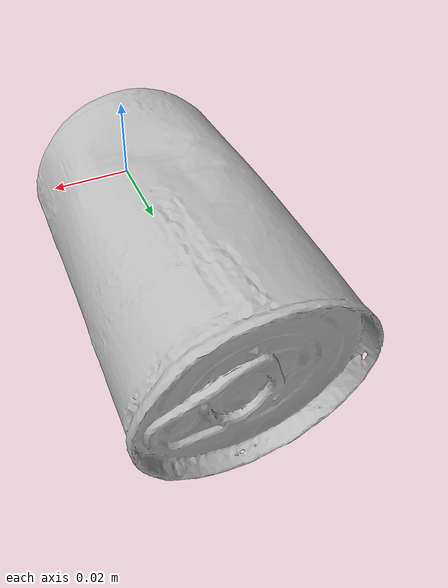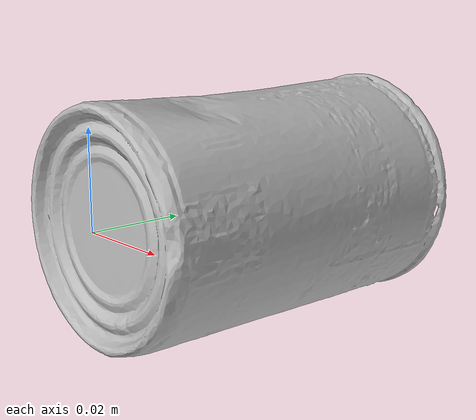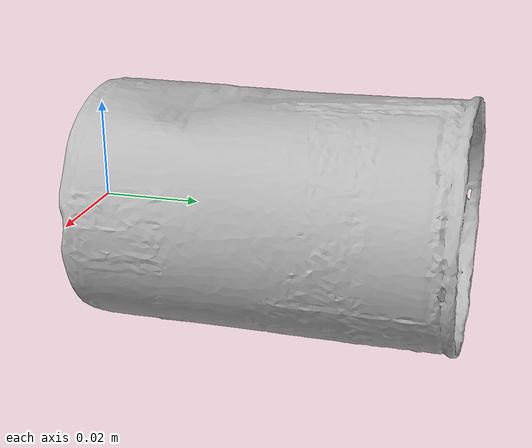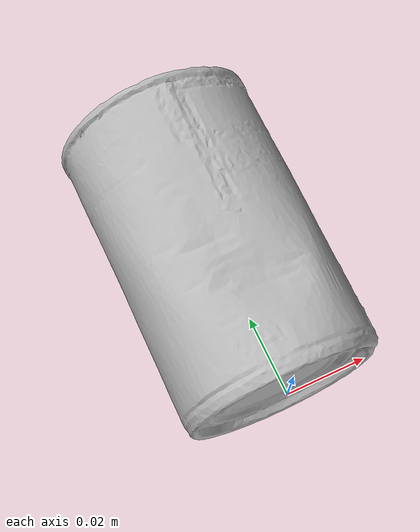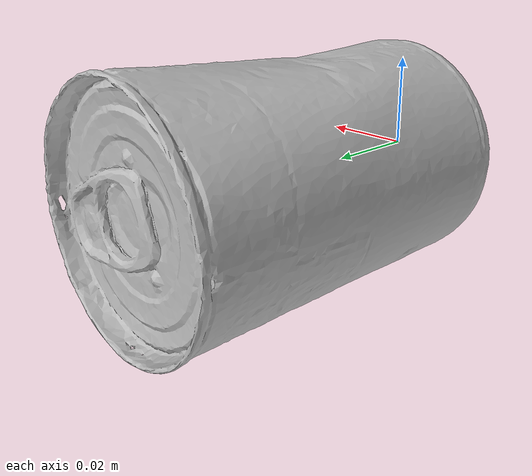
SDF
<?xml version='1.0'?>
<sdf version="1.4">
  <model name="tomato_soup">
    <pose>0 0 0  0 0 0</pose>
    <static>0</static>
    <link name="body">
      <inertial>
	<pose>0 0.03535 0  0 0 0</pose>
          <mass>0.349</mass>
          <inertia>
            <ixx>0.000715</ixx>
            <ixy>0.000000</ixy>
            <ixz>0.000000</ixz>
            <iyy>0.000428</iyy>
            <iyz>0.000000</iyz>
            <izz>0.000715</izz>
          </inertia>
      </inertial>
      <collision name="collision">
        <pose>0 0.03535 0  0 0 0</pose>
	<geometry>
          <box>
	    <size>0.0528 0.0808 0.0528</size>
  	  </box>
        </geometry>
        <surface>
            <friction>
              <ode>
                <mu>30.0</mu>
                <mu2>30.0</mu2>
              </ode>
            </friction>
            <contact>
              <ode>
                <kp>1000000.0</kp>
                <kd>100.0</kd>
                <max_vel>1.0</max_vel>
                <min_depth>0.002</min_depth>
              </ode>
            </contact>
        </surface>
      </collision>
      <visual name="visual">
        <geometry>
          <mesh>
			  <uri>model://tomatosoup/meshes/tomato.obj</uri>
			  <scale>0.075 0.075 0.075</scale>
          </mesh>
        </geometry>
      </visual>
      <velocity_decay>
        <linear>0.000000</linear>
        <angular>0.000000</angular>
      </velocity_decay>
      <self_collide>0</self_collide>
      <kinematic>0</kinematic>
      <gravity>1</gravity>
    </link>
  </model>
</sdf>
